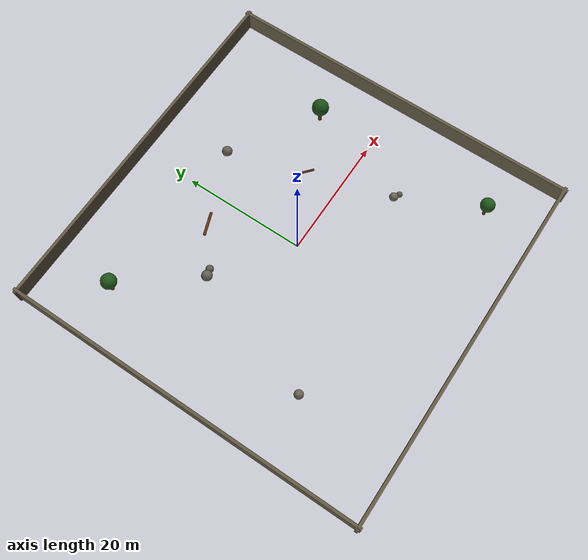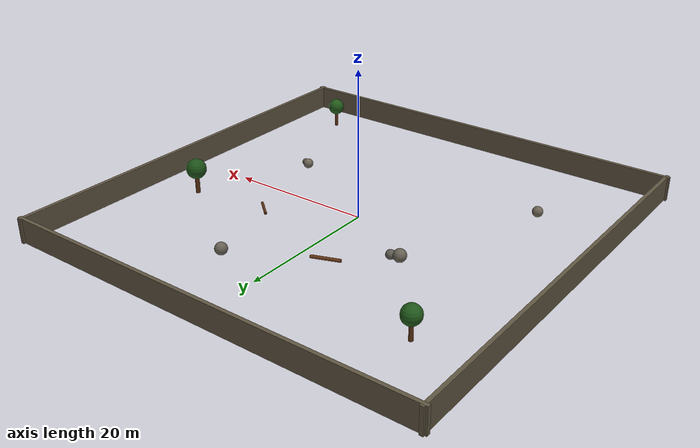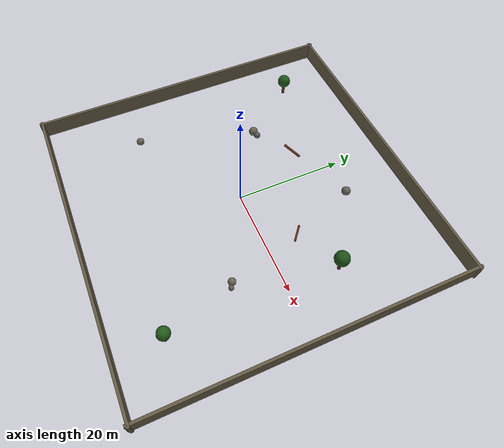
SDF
<sdf version="1.8">
 <world name="semantic_segmentation_world">
  <plugin filename="ignition-gazebo-physics-system" name="ignition::gazebo::systems::Physics"/>
  <plugin filename="ignition-gazebo-user-commands-system" name="ignition::gazebo::systems::UserCommands"/>
  <plugin filename="ignition-gazebo-scene-broadcaster-system" name="ignition::gazebo::systems::SceneBroadcaster"/>
  <plugin filename="ignition-gazebo-sensors-system" name="ignition::gazebo::systems::Sensors">
   <render_engine>ogre2</render_engine>
  </plugin>
  <plugin filename="ignition-gazebo-imu-system" name="ignition::gazebo::systems::Imu"/>
  <physics name="1ms" type="ignored">
   <max_step_size>0.001</max_step_size>
   <real_time_factor>1.0</real_time_factor>
   <gravity>0 0 -9.8</gravity>
  </physics>
  <scene>
   <ambient>0.45 0.47 0.42 1</ambient>
   <background>0.62 0.76 0.88 1</background>
   <shadows>true</shadows>
  </scene>
  <light type="directional" name="sun">
   <pose>0 0 30 0 0 0</pose>
   <diffuse>0.88 0.84 0.72 1</diffuse>
   <specular>0.18 0.18 0.16 1</specular>
   <attenuation>
    <range>1000</range>
    <constant>0.9</constant>
    <linear>0.01</linear>
    <quadratic>0.001</quadratic>
   </attenuation>
   <direction>-0.45 0.25 -0.86</direction>
  </light>
  <model name="terrain_boundary">
   <static>true</static>
   <link name="boundary_link">
    <collision name="north_collision">
     <pose>0 29.5 1.35 0 0 0</pose>
     <geometry><box><size>60 0.5 3.4</size></box></geometry>
    </collision>
    <visual name="north_visual">
     <pose>0 29.5 1.35 0 0 0</pose>
     <geometry><box><size>60 0.5 3.4</size></box></geometry>
     <material><ambient>0.30 0.27 0.21 1</ambient><diffuse>0.38 0.34 0.26 1</diffuse></material>
    </visual>
    <collision name="south_collision">
     <pose>0 -29.5 1.35 0 0 0</pose>
     <geometry><box><size>60 0.5 3.4</size></box></geometry>
    </collision>
    <visual name="south_visual">
     <pose>0 -29.5 1.35 0 0 0</pose>
     <geometry><box><size>60 0.5 3.4</size></box></geometry>
     <material><ambient>0.30 0.27 0.21 1</ambient><diffuse>0.38 0.34 0.26 1</diffuse></material>
    </visual>
    <collision name="east_collision">
     <pose>29.5 0 1.35 0 0 0</pose>
     <geometry><box><size>0.5 60 3.4</size></box></geometry>
    </collision>
    <visual name="east_visual">
     <pose>29.5 0 1.35 0 0 0</pose>
     <geometry><box><size>0.5 60 3.4</size></box></geometry>
     <material><ambient>0.30 0.27 0.21 1</ambient><diffuse>0.38 0.34 0.26 1</diffuse></material>
    </visual>
    <collision name="west_collision">
     <pose>-29.5 0 1.35 0 0 0</pose>
     <geometry><box><size>0.5 60 3.4</size></box></geometry>
    </collision>
    <visual name="west_visual">
     <pose>-29.5 0 1.35 0 0 0</pose>
     <geometry><box><size>0.5 60 3.4</size></box></geometry>
     <material><ambient>0.30 0.27 0.21 1</ambient><diffuse>0.38 0.34 0.26 1</diffuse></material>
    </visual>
   </link>
   <plugin filename="ignition-gazebo-label-system" name="ignition::gazebo::systems::Label">
    <label>4</label>
   </plugin>
  </model>
  <model name="mountain_rocks">
   <static>true</static>
   <link name="rocks_link">
    <collision name="rock_1_collision">
     <pose>-12 8 2.15 0 0 0</pose>
     <geometry><sphere><radius>0.85</radius></sphere></geometry>
    </collision>
    <visual name="rock_1_visual">
     <pose>-12 8 2.15 0 0 0</pose>
     <geometry><sphere><radius>0.85</radius></sphere></geometry>
     <material><ambient>0.29 0.28 0.25 1</ambient><diffuse>0.40 0.38 0.33 1</diffuse></material>
    </visual>
    <collision name="rock_2_collision">
     <pose>-10.9 8.3 2.05 0 0 0</pose>
     <geometry><sphere><radius>0.62</radius></sphere></geometry>
    </collision>
    <visual name="rock_2_visual">
     <pose>-10.9 8.3 2.05 0 0 0</pose>
     <geometry><sphere><radius>0.62</radius></sphere></geometry>
     <material><ambient>0.25 0.25 0.23 1</ambient><diffuse>0.36 0.35 0.31 1</diffuse></material>
    </visual>
    <collision name="rock_3_collision">
     <pose>15 -8 0.75 0 0 0</pose>
     <geometry><sphere><radius>0.70</radius></sphere></geometry>
    </collision>
    <visual name="rock_3_visual">
     <pose>15 -8 0.75 0 0 0</pose>
     <geometry><sphere><radius>0.70</radius></sphere></geometry>
     <material><ambient>0.31 0.29 0.25 1</ambient><diffuse>0.43 0.40 0.34 1</diffuse></material>
    </visual>
    <collision name="rock_4_collision">
     <pose>15.9 -8.5 0.58 0 0 0</pose>
     <geometry><sphere><radius>0.48</radius></sphere></geometry>
    </collision>
    <visual name="rock_4_visual">
     <pose>15.9 -8.5 0.58 0 0 0</pose>
     <geometry><sphere><radius>0.48</radius></sphere></geometry>
     <material><ambient>0.26 0.25 0.22 1</ambient><diffuse>0.37 0.36 0.31 1</diffuse></material>
    </visual>
    <collision name="rock_5_collision">
     <pose>7 18 1.15 0 0 0</pose>
     <geometry><sphere><radius>0.82</radius></sphere></geometry>
    </collision>
    <visual name="rock_5_visual">
     <pose>7 18 1.15 0 0 0</pose>
     <geometry><sphere><radius>0.82</radius></sphere></geometry>
     <material><ambient>0.28 0.27 0.24 1</ambient><diffuse>0.40 0.38 0.33 1</diffuse></material>
    </visual>
    <collision name="rock_6_collision">
     <pose>-19 -13 1.35 0 0 0</pose>
     <geometry><sphere><radius>0.72</radius></sphere></geometry>
    </collision>
    <visual name="rock_6_visual">
     <pose>-19 -13 1.35 0 0 0</pose>
     <geometry><sphere><radius>0.72</radius></sphere></geometry>
     <material><ambient>0.30 0.28 0.24 1</ambient><diffuse>0.42 0.39 0.33 1</diffuse></material>
    </visual>
   </link>
   <plugin filename="ignition-gazebo-label-system" name="ignition::gazebo::systems::Label">
    <label>5</label>
   </plugin>
  </model>
  <model name="fallen_logs">
   <static>true</static>
   <link name="logs_link">
    <collision name="log_1_collision">
     <pose>-5 13 1.62 0 1.5708 0.35</pose>
     <geometry><cylinder><radius>0.22</radius><length>3.8</length></cylinder></geometry>
    </collision>
    <visual name="log_1_visual">
     <pose>-5 13 1.62 0 1.5708 0.35</pose>
     <geometry><cylinder><radius>0.22</radius><length>3.8</length></cylinder></geometry>
     <material><ambient>0.25 0.13 0.055 1</ambient><diffuse>0.38 0.20 0.08 1</diffuse></material>
    </visual>
    <collision name="log_2_collision">
     <pose>11 6 0.44 0 1.5708 -0.7</pose>
     <geometry><cylinder><radius>0.18</radius><length>3.2</length></cylinder></geometry>
    </collision>
    <visual name="log_2_visual">
     <pose>11 6 0.44 0 1.5708 -0.7</pose>
     <geometry><cylinder><radius>0.18</radius><length>3.2</length></cylinder></geometry>
     <material><ambient>0.23 0.12 0.05 1</ambient><diffuse>0.36 0.19 0.07 1</diffuse></material>
    </visual>
   </link>
   <plugin filename="ignition-gazebo-label-system" name="ignition::gazebo::systems::Label">
    <label>5</label>
   </plugin>
  </model>
  <model name="sparse_trees">
   <static>true</static>
   <link name="trees_link">
    <collision name="trunk_1_collision">
     <pose>-21 19 1.65 0 0 0</pose>
     <geometry><cylinder><radius>0.27</radius><length>2.8</length></cylinder></geometry>
    </collision>
    <visual name="trunk_1_visual">
     <pose>-21 19 1.65 0 0 0</pose>
     <geometry><cylinder><radius>0.27</radius><length>2.8</length></cylinder></geometry>
     <material><ambient>0.24 0.13 0.06 1</ambient><diffuse>0.36 0.20 0.08 1</diffuse></material>
    </visual>
    <visual name="crown_1_visual">
     <pose>-21 19 3.45 0 0 0</pose>
     <geometry><sphere><radius>1.25</radius></sphere></geometry>
     <material><ambient>0.08 0.22 0.07 1</ambient><diffuse>0.12 0.34 0.10 1</diffuse></material>
    </visual>
    <collision name="trunk_2_collision">
     <pose>20 9 2.80 0 0 0</pose>
     <geometry><cylinder><radius>0.30</radius><length>3.0</length></cylinder></geometry>
    </collision>
    <visual name="trunk_2_visual">
     <pose>20 9 2.80 0 0 0</pose>
     <geometry><cylinder><radius>0.30</radius><length>3.0</length></cylinder></geometry>
     <material><ambient>0.23 0.12 0.05 1</ambient><diffuse>0.35 0.19 0.07 1</diffuse></material>
    </visual>
    <visual name="crown_2_visual">
     <pose>20 9 4.75 0 0 0</pose>
     <geometry><sphere><radius>1.35</radius></sphere></geometry>
     <material><ambient>0.07 0.20 0.06 1</ambient><diffuse>0.11 0.32 0.09 1</diffuse></material>
    </visual>
    <collision name="trunk_3_collision">
     <pose>20 -21 2.58 0 0 0</pose>
     <geometry><cylinder><radius>0.25</radius><length>2.6</length></cylinder></geometry>
    </collision>
    <visual name="trunk_3_visual">
     <pose>20 -21 2.58 0 0 0</pose>
     <geometry><cylinder><radius>0.25</radius><length>2.6</length></cylinder></geometry>
     <material><ambient>0.24 0.13 0.06 1</ambient><diffuse>0.36 0.20 0.08 1</diffuse></material>
    </visual>
    <visual name="crown_3_visual">
     <pose>20 -21 4.33 0 0 0</pose>
     <geometry><sphere><radius>1.15</radius></sphere></geometry>
     <material><ambient>0.09 0.23 0.07 1</ambient><diffuse>0.13 0.35 0.10 1</diffuse></material>
    </visual>
   </link>
   <plugin filename="ignition-gazebo-label-system" name="ignition::gazebo::systems::Label">
    <label>5</label>
   </plugin>
  </model>
 </world>
</sdf>
